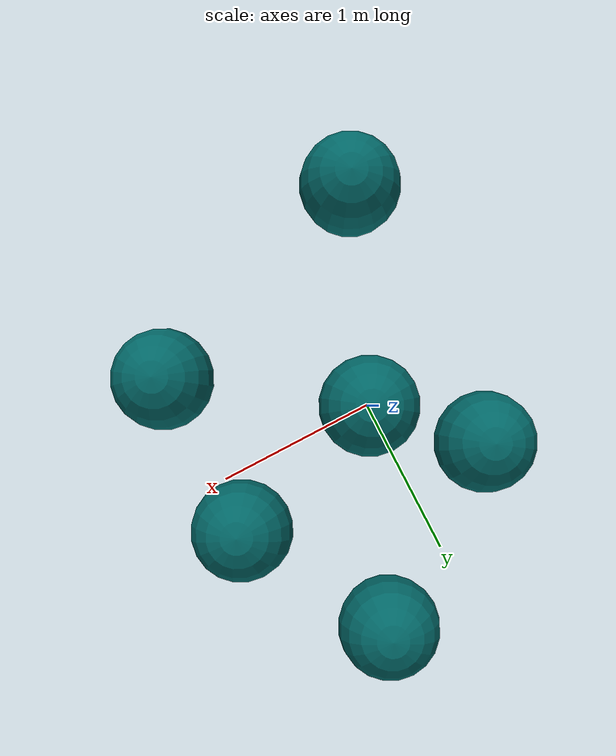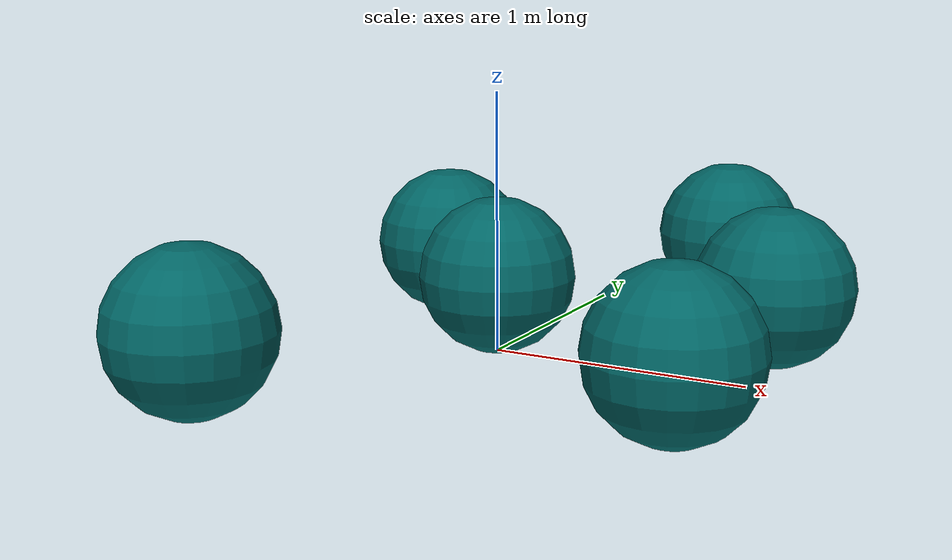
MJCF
<mujoco>
    <worldbody>
        <body name="big_ball1" pos="-0.5 -1.2 .3" euler="0 0 0">
            <joint type = "free"/>
            <geom type="sphere" size=".3" rgba="0 .4 .4 1"/>
        </body>

        <body name="big_ball2" pos="1 -0.7 .3" euler="0 0 0">
            <joint type = "free"/>
            <geom type="sphere" size=".3" rgba="0 .4 .4 1"/>
        </body>

        <body name="big_ball3" pos="0 0 .3" euler="0 0 0">
            <joint type = "free"/>
            <geom type="sphere" size=".3" rgba="0 .4 .4 1"/>
        </body>

        <body name="big_ball4" pos="0.5 1.2 .3" euler="0 0 0">
            <joint type = "free"/>
            <geom type="sphere" size=".3" rgba="0 .4 .4 1"/>
        </body>

        <body name="big_ball5" pos="1 0.3 .3" euler="0 0 0">
            <joint type = "free"/>
            <geom type="sphere" size=".3" rgba="0 .4 .4 1"/>
        </body>

        <body name="big_ball6" pos="-0.5 0.5 .3" euler="0 0 0">
            <joint type = "free"/>
            <geom type="sphere" size=".3" rgba="0 .4 .4 1"/>
        </body>

    </worldbody>
</mujoco>
